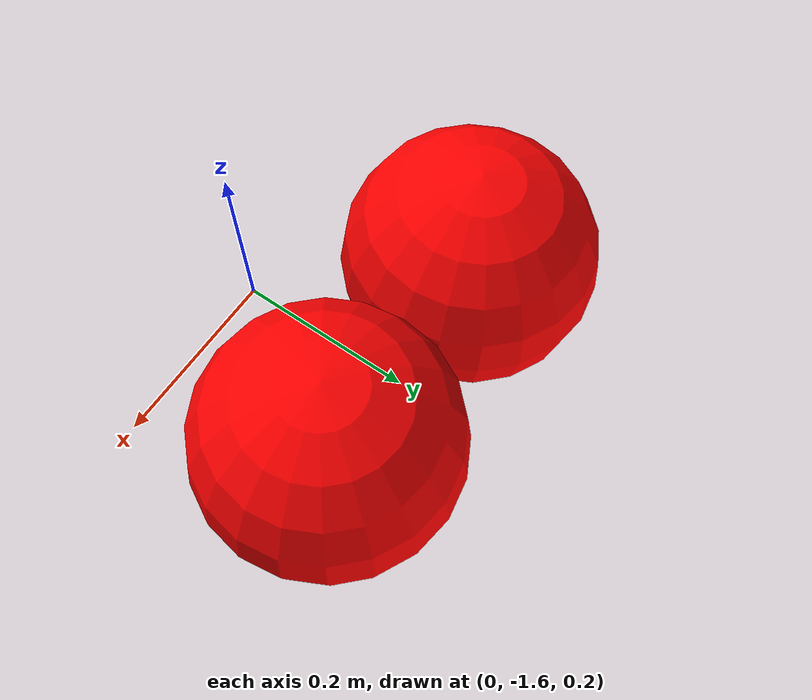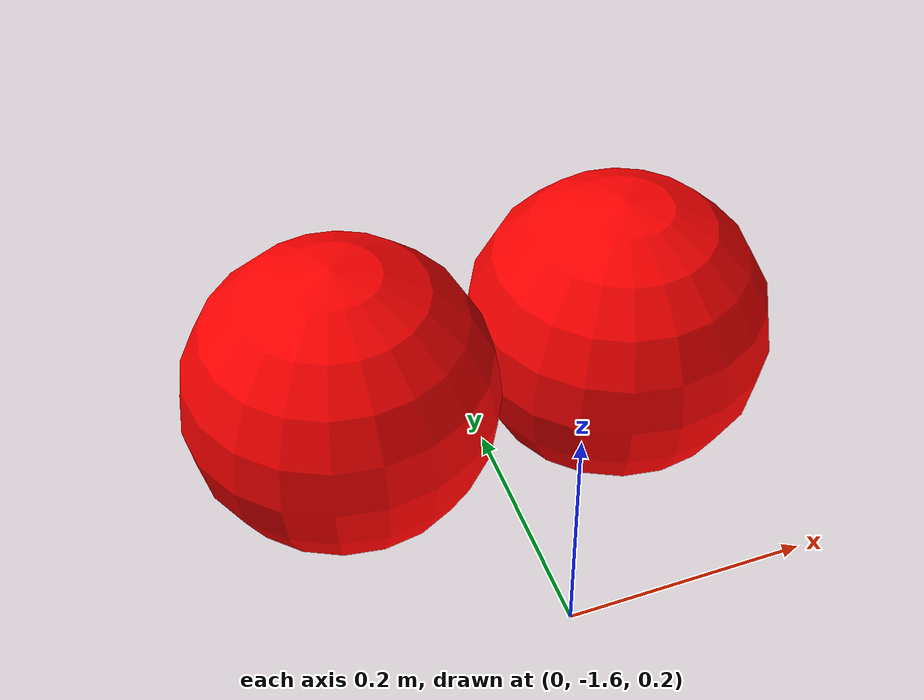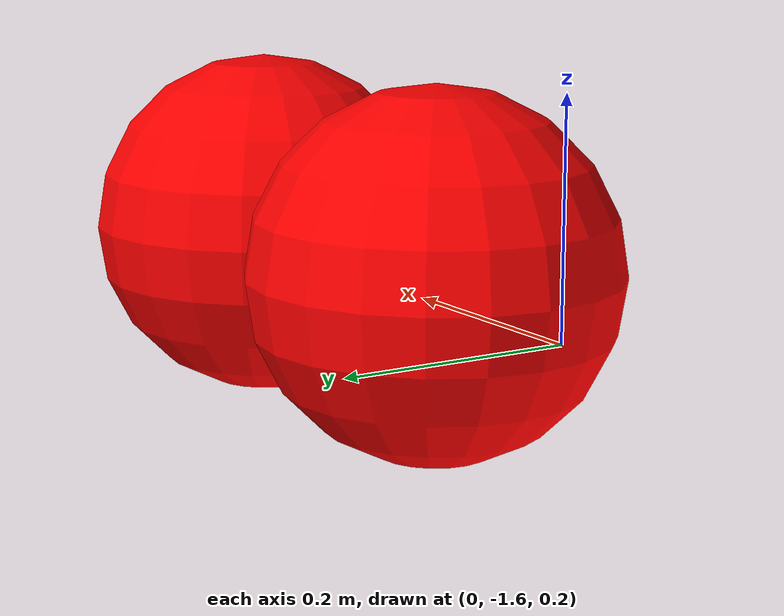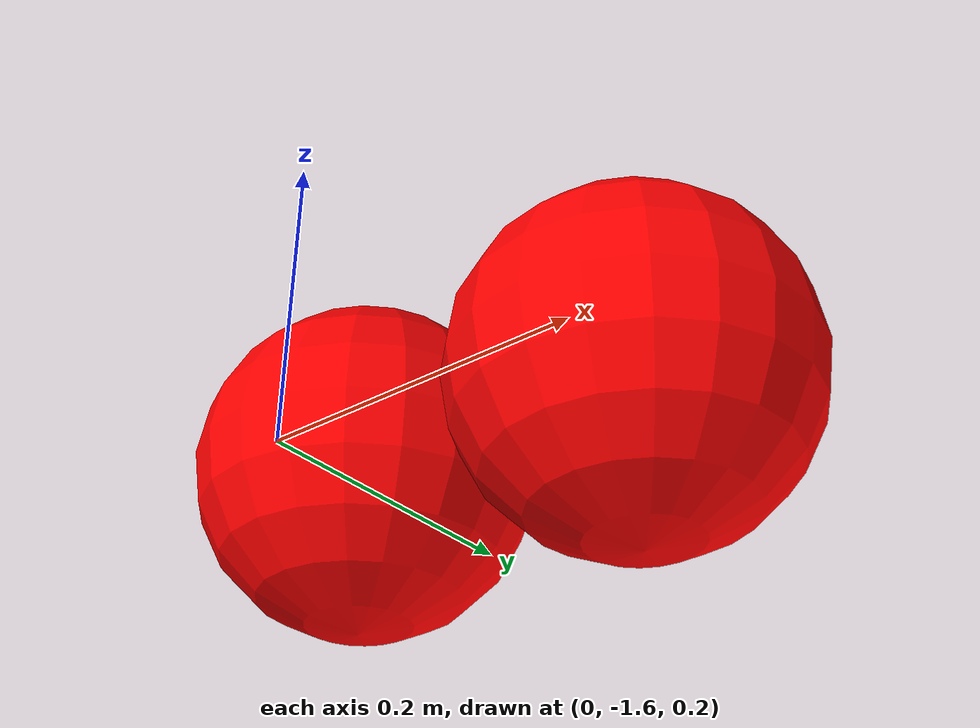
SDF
<?xml version="1.0"?>
<!-- 受控多目标压力例：两个相切红球，观察分水岭分离或合并风险。 -->
<sdf version="1.9"><model name="hw_suite_touching_pair"><static>true</static><link name="ball_left_link"><pose>-0.12 -1.40 0.30 0 0 0</pose><visual name="visual"><geometry><sphere><radius>0.13</radius></sphere></geometry><material><ambient>1 0 0 1</ambient><diffuse>1 0 0 1</diffuse></material></visual></link><link name="ball_right_link"><pose>0.12 -1.40 0.30 0 0 0</pose><visual name="visual"><geometry><sphere><radius>0.13</radius></sphere></geometry><material><ambient>1 0 0 1</ambient><diffuse>1 0 0 1</diffuse></material></visual></link></model></sdf>
